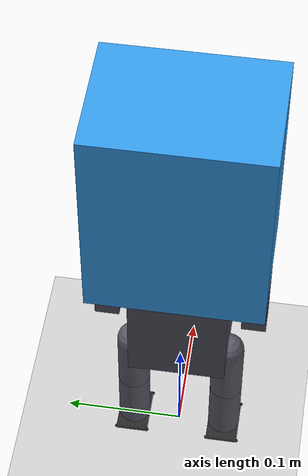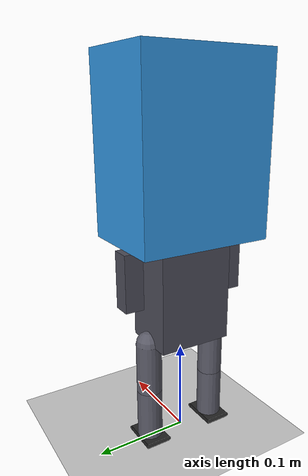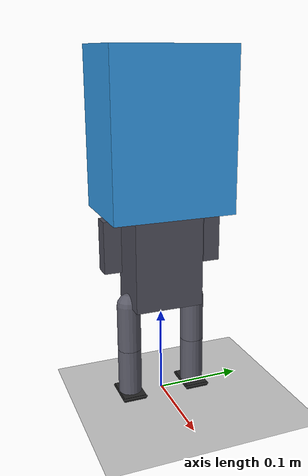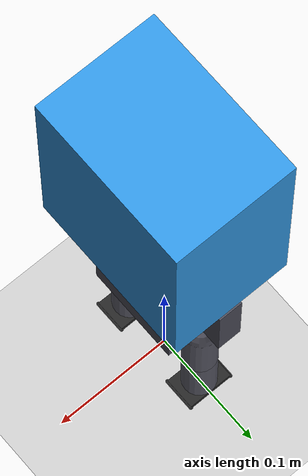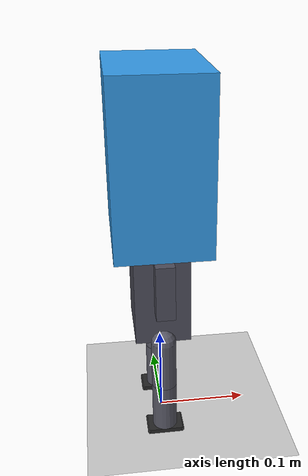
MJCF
<mujoco model="candidate_B_ankle_pitch">
  <compiler angle="radian" autolimits="true"/>
  <option timestep="0.004" gravity="0 0 -9.81"/>

  <default>
    <joint type="hinge" damping="0.3" armature="0.001"/>
    <position kp="12" ctrlrange="-3.1416 3.1416"/>
    <geom contype="0" conaffinity="0" friction="0.9 0.02 0.01"/>
    <default class="foot_collision">
      <geom contype="1" conaffinity="1"/>
    </default>
  </default>

  <worldbody>
    <light pos="0 0 2" dir="0 0 -1" diffuse="1 1 1"/>
    <geom name="floor" type="plane" size="0 0 0.01" contype="1" conaffinity="0" rgba="0.8 0.8 0.8 1"/>

    <body name="body_link" pos="0 0 0.17">
      <freejoint/>
      <site name="imu" pos="0 0 0"/>
      <geom name="torso_geom" type="box" size="0.03 0.04 0.055" mass="0.53" rgba="0.3 0.3 0.35 1"/>
      <geom name="head_geom" type="box" pos="0 0 0.145" size="0.05 0.07 0.09" mass="0.45" rgba="0.2 0.6 0.9 1"/>
      <geom name="l_arm_geom" type="box" pos="0 0.06 0.02" size="0.01 0.01 0.03" mass="0.03" rgba="0.3 0.3 0.35 1"/>
      <geom name="r_arm_geom" type="box" pos="0 -0.06 0.02" size="0.01 0.01 0.03" mass="0.03" rgba="0.3 0.3 0.35 1"/>

      <!-- 왼쪽 다리 -->
      <body name="l_hip_yaw_link" pos="0 0.04 -0.055">
        <joint name="l_hip_yaw" axis="0 0 1" range="-0.5236 0.5236"/>
        <geom type="sphere" size="0.008" mass="0.02" rgba="0.5 0.5 0.5 1"/>
        <body name="l_hip_roll_link">
          <joint name="l_hip_roll" axis="1 0 0" range="-0.5236 0.5236"/>
          <geom type="sphere" size="0.008" mass="0.03" rgba="0.5 0.5 0.5 1"/>
          <body name="l_hip_pitch_link">
            <joint name="l_hip_pitch" axis="0 1 0" range="-1.5708 0.7854"/>
            <geom name="l_thigh_geom" type="capsule" fromto="0 0 0 0 0 -0.055" size="0.01375" mass="0.08" rgba="0.35 0.35 0.4 1"/>
            <body name="l_knee_link" pos="0 0 -0.055">
              <joint name="l_knee" axis="0 1 0" range="-0.1745 2.0944"/>
              <geom name="l_shank_geom" type="capsule" fromto="0 0 0 0 0 -0.055" size="0.01375" mass="0.06" rgba="0.35 0.35 0.4 1"/>
              <body name="l_ank_pitch_link" pos="0 0 -0.055">
                <joint name="l_ank_pitch" axis="0 1 0" range="-0.5236 0.5236"/>
                <geom class="foot_collision" name="l_foot_sole" type="box" pos="0 0 -0.0025" size="0.01925 0.0135 0.0025" mass="0.035" rgba="0.15 0.15 0.15 1"/>
                <geom class="foot_collision" name="l_foot_heel_chamfer" type="capsule" pos="-0.01925 0 -0.002" axisangle="1 0 0 1.5708" size="0.0015 0.0135" mass="0.0025" rgba="0.15 0.15 0.15 1"/>
                <geom class="foot_collision" name="l_foot_toe_chamfer" type="capsule" pos="0.01925 0 -0.002" axisangle="1 0 0 1.5708" size="0.0015 0.0135" mass="0.0025" rgba="0.15 0.15 0.15 1"/>
              </body>
            </body>
          </body>
        </body>
      </body>

      <!-- 오른쪽 다리 (좌우 대칭) -->
      <body name="r_hip_yaw_link" pos="0 -0.04 -0.055">
        <joint name="r_hip_yaw" axis="0 0 1" range="-0.5236 0.5236"/>
        <geom type="sphere" size="0.008" mass="0.02" rgba="0.5 0.5 0.5 1"/>
        <body name="r_hip_roll_link">
          <joint name="r_hip_roll" axis="1 0 0" range="-0.5236 0.5236"/>
          <geom type="sphere" size="0.008" mass="0.03" rgba="0.5 0.5 0.5 1"/>
          <body name="r_hip_pitch_link">
            <joint name="r_hip_pitch" axis="0 1 0" range="-1.5708 0.7854"/>
            <geom name="r_thigh_geom" type="capsule" fromto="0 0 0 0 0 -0.055" size="0.01375" mass="0.08" rgba="0.35 0.35 0.4 1"/>
            <body name="r_knee_link" pos="0 0 -0.055">
              <joint name="r_knee" axis="0 1 0" range="-0.1745 2.0944"/>
              <geom name="r_shank_geom" type="capsule" fromto="0 0 0 0 0 -0.055" size="0.01375" mass="0.06" rgba="0.35 0.35 0.4 1"/>
              <body name="r_ank_pitch_link" pos="0 0 -0.055">
                <joint name="r_ank_pitch" axis="0 1 0" range="-0.5236 0.5236"/>
                <geom class="foot_collision" name="r_foot_sole" type="box" pos="0 0 -0.0025" size="0.01925 0.0135 0.0025" mass="0.035" rgba="0.15 0.15 0.15 1"/>
                <geom class="foot_collision" name="r_foot_heel_chamfer" type="capsule" pos="-0.01925 0 -0.002" axisangle="1 0 0 1.5708" size="0.0015 0.0135" mass="0.0025" rgba="0.15 0.15 0.15 1"/>
                <geom class="foot_collision" name="r_foot_toe_chamfer" type="capsule" pos="0.01925 0 -0.002" axisangle="1 0 0 1.5708" size="0.0015 0.0135" mass="0.0025" rgba="0.15 0.15 0.15 1"/>
              </body>
            </body>
          </body>
        </body>
      </body>
    </body>
  </worldbody>

  <actuator>
    <position name="l_hip_yaw_act" joint="l_hip_yaw"/>
    <position name="l_hip_roll_act" joint="l_hip_roll"/>
    <position name="l_hip_pitch_act" joint="l_hip_pitch"/>
    <position name="l_knee_act" joint="l_knee"/>
    <position name="l_ank_pitch_act" joint="l_ank_pitch"/>
    <position name="r_hip_yaw_act" joint="r_hip_yaw"/>
    <position name="r_hip_roll_act" joint="r_hip_roll"/>
    <position name="r_hip_pitch_act" joint="r_hip_pitch"/>
    <position name="r_knee_act" joint="r_knee"/>
    <position name="r_ank_pitch_act" joint="r_ank_pitch"/>
  </actuator>

  <sensor>
    <gyro site="imu" name="gyro"/>
    <velocimeter site="imu" name="local_linvel"/>
    <accelerometer site="imu" name="accelerometer"/>
    <framezaxis objtype="site" objname="imu" name="upvector"/>
    <framelinvel objtype="site" objname="imu" name="global_linvel"/>
    <frameangvel objtype="site" objname="imu" name="global_angvel"/>
    <framepos objtype="site" objname="imu" name="position"/>
  </sensor>

  <keyframe>
    <!-- 편 다리 자세 유지 (candidate_A.xml과 동일한 이유 — 관절 범위 확장만으로
         충분하고, 자세를 구부릴 필요는 없었다). -->
    <key name="stand" qpos="0 0 0.17 1 0 0 0  0 0 0 0 0  0 0 0 0 0"/>
  </keyframe>
</mujoco>
